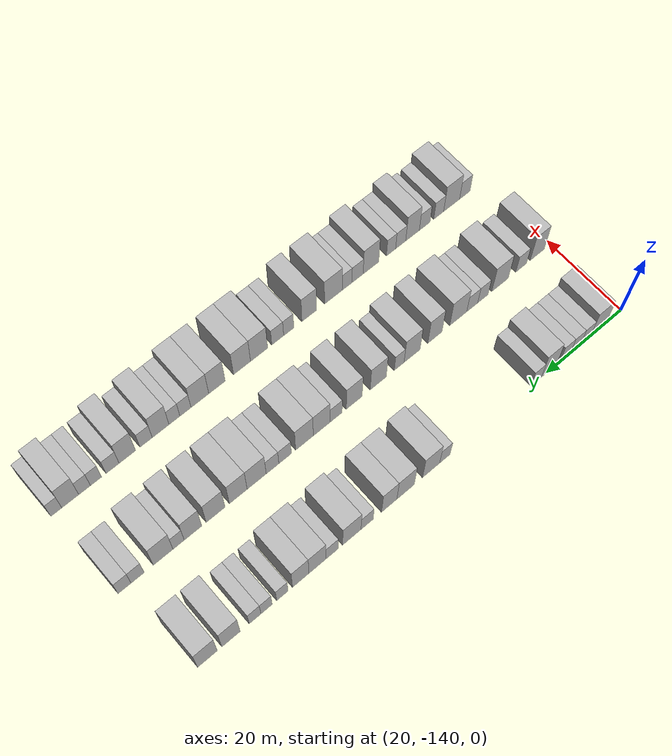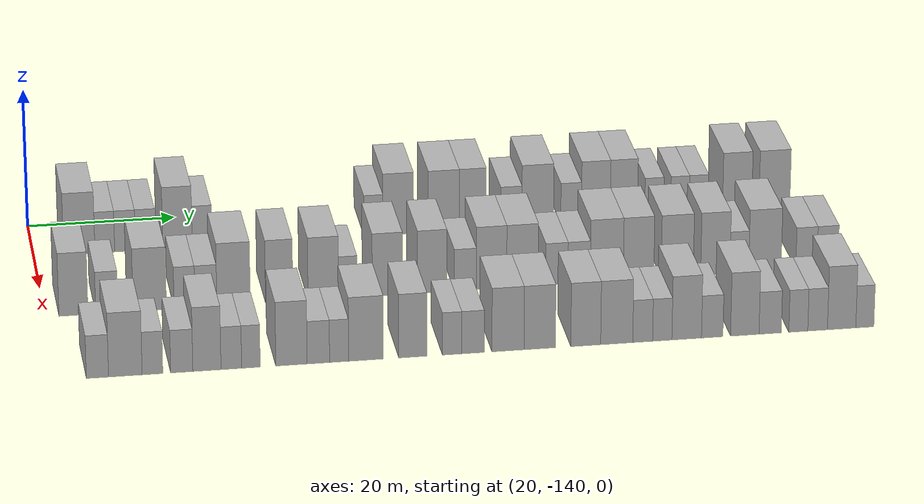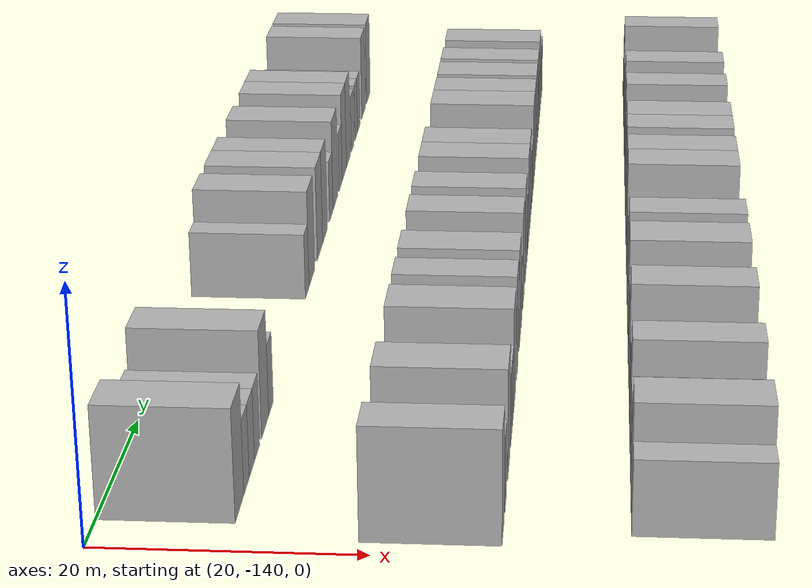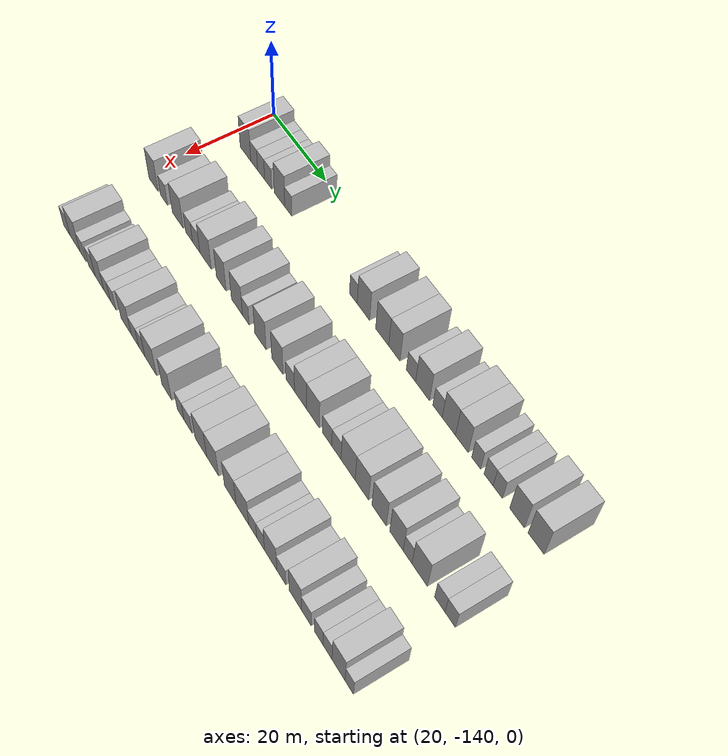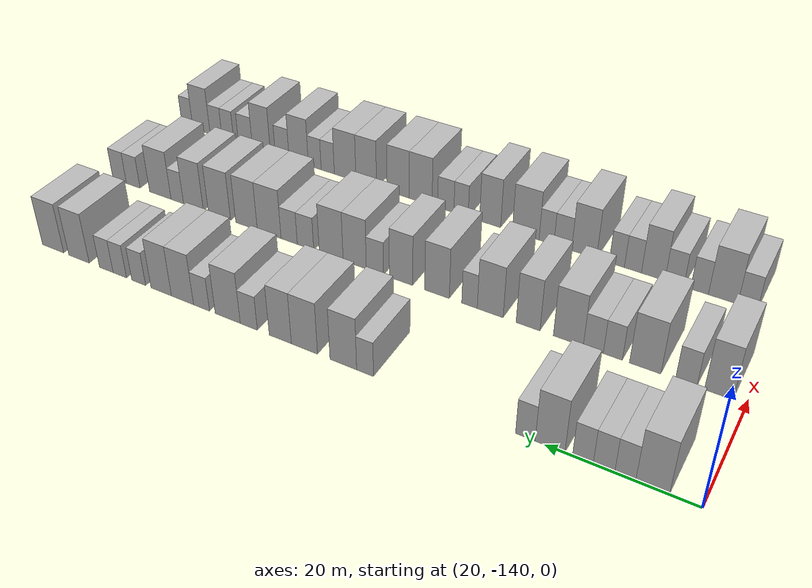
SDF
<sdf version="1.6">
 <world name="default">
  <model name="building_27">
   <static>1</static>
   <pose>25.0000 -133.9004 0 0.000000 0.000000 0.000000</pose>
   <link name="link">
    <pose>0 0 4.50 0 0 0</pose>
    <collision name="collision"><geometry><box><size>10.0000 4.2043 9.0000</size></box></geometry></collision>
    <visual name="visual">
     <cast_shadows>0</cast_shadows>
     <geometry><box><size>10.0000 4.2043 9.0000</size></box></geometry>
     <material>
      <script>
       <uri>model://HANNAS_wall/materials/scripts</uri>
       <uri>model://HANNAS_wall/materials/textures</uri>
       <name>vrc/HANNAS_wall</name>
      </script>
     </material>
    </visual>
   </link>
  </model>
  <model name="building_28">
   <static>1</static>
   <pose>25.0000 -130.4720 0 0.000000 0.000000 0.000000</pose>
   <link name="link">
    <pose>0 0 3.00 0 0 0</pose>
    <collision name="collision"><geometry><box><size>10.0000 2.6524 6.0000</size></box></geometry></collision>
    <visual name="visual">
     <cast_shadows>0</cast_shadows>
     <geometry><box><size>10.0000 2.6524 6.0000</size></box></geometry>
     <material>
      <script>
       <uri>model://HANNAS_wall/materials/scripts</uri>
       <uri>model://HANNAS_wall/materials/textures</uri>
       <name>vrc/HANNAS_wall</name>
      </script>
     </material>
    </visual>
   </link>
  </model>
  <model name="building_29">
   <static>1</static>
   <pose>25.0000 -127.7629 0 0.000000 0.000000 0.000000</pose>
   <link name="link">
    <pose>0 0 3.00 0 0 0</pose>
    <collision name="collision"><geometry><box><size>10.0000 2.7659 6.0000</size></box></geometry></collision>
    <visual name="visual">
     <cast_shadows>0</cast_shadows>
     <geometry><box><size>10.0000 2.7659 6.0000</size></box></geometry>
     <material>
      <script>
       <uri>model://HANNAS_wall/materials/scripts</uri>
       <uri>model://HANNAS_wall/materials/textures</uri>
       <name>vrc/HANNAS_wall</name>
      </script>
     </material>
    </visual>
   </link>
  </model>
  <model name="building_30">
   <static>1</static>
   <pose>25.0000 -125.0303 0 0.000000 0.000000 0.000000</pose>
   <link name="link">
    <pose>0 0 3.00 0 0 0</pose>
    <collision name="collision"><geometry><box><size>10.0000 2.6993 6.0000</size></box></geometry></collision>
    <visual name="visual">
     <cast_shadows>0</cast_shadows>
     <geometry><box><size>10.0000 2.6993 6.0000</size></box></geometry>
     <material>
      <script>
       <uri>model://HANNAS_wall/materials/scripts</uri>
       <uri>model://HANNAS_wall/materials/textures</uri>
       <name>vrc/HANNAS_wall</name>
      </script>
     </material>
    </visual>
   </link>
  </model>
  <model name="building_31">
   <static>1</static>
   <pose>25.0000 -120.6938 0 0.000000 0.000000 0.000000</pose>
   <link name="link">
    <pose>0 0 4.50 0 0 0</pose>
    <collision name="collision"><geometry><box><size>10.0000 3.9736 9.0000</size></box></geometry></collision>
    <visual name="visual">
     <cast_shadows>0</cast_shadows>
     <geometry><box><size>10.0000 3.9736 9.0000</size></box></geometry>
     <material>
      <script>
       <uri>model://HANNAS_wall/materials/scripts</uri>
       <uri>model://HANNAS_wall/materials/textures</uri>
       <name>vrc/HANNAS_wall</name>
      </script>
     </material>
    </visual>
   </link>
  </model>
  <model name="building_32">
   <static>1</static>
   <pose>25.0000 -117.3727 0 0.000000 0.000000 0.000000</pose>
   <link name="link">
    <pose>0 0 3.00 0 0 0</pose>
    <collision name="collision"><geometry><box><size>10.0000 2.6687 6.0000</size></box></geometry></collision>
    <visual name="visual">
     <cast_shadows>0</cast_shadows>
     <geometry><box><size>10.0000 2.6687 6.0000</size></box></geometry>
     <material>
      <script>
       <uri>model://HANNAS_wall/materials/scripts</uri>
       <uri>model://HANNAS_wall/materials/textures</uri>
       <name>vrc/HANNAS_wall</name>
      </script>
     </material>
    </visual>
   </link>
  </model>
  <model name="building_33">
   <static>1</static>
   <pose>25.0000 -94.1306 0 0.000000 0.000000 0.000000</pose>
   <link name="link">
    <pose>0 0 3.00 0 0 0</pose>
    <collision name="collision"><geometry><box><size>10.0000 2.6051 6.0000</size></box></geometry></collision>
    <visual name="visual">
     <cast_shadows>0</cast_shadows>
     <geometry><box><size>10.0000 2.6051 6.0000</size></box></geometry>
     <material>
      <script>
       <uri>model://HANNAS_wall/materials/scripts</uri>
       <uri>model://HANNAS_wall/materials/textures</uri>
       <name>vrc/HANNAS_wall</name>
      </script>
     </material>
    </visual>
   </link>
  </model>
  <model name="building_34">
   <static>1</static>
   <pose>25.0000 -90.7363 0 0.000000 0.000000 0.000000</pose>
   <link name="link">
    <pose>0 0 4.50 0 0 0</pose>
    <collision name="collision"><geometry><box><size>10.0000 4.1834 9.0000</size></box></geometry></collision>
    <visual name="visual">
     <cast_shadows>0</cast_shadows>
     <geometry><box><size>10.0000 4.1834 9.0000</size></box></geometry>
     <material>
      <script>
       <uri>model://HANNAS_wall/materials/scripts</uri>
       <uri>model://HANNAS_wall/materials/textures</uri>
       <name>vrc/HANNAS_wall</name>
      </script>
     </material>
    </visual>
   </link>
  </model>
  <model name="building_35">
   <static>1</static>
   <pose>25.0000 -84.5259 0 0.000000 0.000000 0.000000</pose>
   <link name="link">
    <pose>0 0 4.50 0 0 0</pose>
    <collision name="collision"><geometry><box><size>10.0000 4.2373 9.0000</size></box></geometry></collision>
    <visual name="visual">
     <cast_shadows>0</cast_shadows>
     <geometry><box><size>10.0000 4.2373 9.0000</size></box></geometry>
     <material>
      <script>
       <uri>model://HANNAS_wall/materials/scripts</uri>
       <uri>model://HANNAS_wall/materials/textures</uri>
       <name>vrc/HANNAS_wall</name>
      </script>
     </material>
    </visual>
   </link>
  </model>
  <model name="building_36">
   <static>1</static>
   <pose>25.0000 -80.5714 0 0.000000 0.000000 0.000000</pose>
   <link name="link">
    <pose>0 0 4.50 0 0 0</pose>
    <collision name="collision"><geometry><box><size>10.0000 3.6718 9.0000</size></box></geometry></collision>
    <visual name="visual">
     <cast_shadows>0</cast_shadows>
     <geometry><box><size>10.0000 3.6718 9.0000</size></box></geometry>
     <material>
      <script>
       <uri>model://HANNAS_wall/materials/scripts</uri>
       <uri>model://HANNAS_wall/materials/textures</uri>
       <name>vrc/HANNAS_wall</name>
      </script>
     </material>
    </visual>
   </link>
  </model>
  <model name="building_37">
   <static>1</static>
   <pose>25.0000 -75.2825 0 0.000000 0.000000 0.000000</pose>
   <link name="link">
    <pose>0 0 3.00 0 0 0</pose>
    <collision name="collision"><geometry><box><size>10.0000 2.9061 6.0000</size></box></geometry></collision>
    <visual name="visual">
     <cast_shadows>0</cast_shadows>
     <geometry><box><size>10.0000 2.9061 6.0000</size></box></geometry>
     <material>
      <script>
       <uri>model://HANNAS_wall/materials/scripts</uri>
       <uri>model://HANNAS_wall/materials/textures</uri>
       <name>vrc/HANNAS_wall</name>
      </script>
     </material>
    </visual>
   </link>
  </model>
  <model name="building_38">
   <static>1</static>
   <pose>25.0000 -71.6623 0 0.000000 0.000000 0.000000</pose>
   <link name="link">
    <pose>0 0 4.50 0 0 0</pose>
    <collision name="collision"><geometry><box><size>10.0000 4.3342 9.0000</size></box></geometry></collision>
    <visual name="visual">
     <cast_shadows>0</cast_shadows>
     <geometry><box><size>10.0000 4.3342 9.0000</size></box></geometry>
     <material>
      <script>
       <uri>model://HANNAS_wall/materials/scripts</uri>
       <uri>model://HANNAS_wall/materials/textures</uri>
       <name>vrc/HANNAS_wall</name>
      </script>
     </material>
    </visual>
   </link>
  </model>
  <model name="building_39">
   <static>1</static>
   <pose>25.0000 -67.0746 0 0.000000 0.000000 0.000000</pose>
   <link name="link">
    <pose>0 0 3.00 0 0 0</pose>
    <collision name="collision"><geometry><box><size>10.0000 2.8413 6.0000</size></box></geometry></collision>
    <visual name="visual">
     <cast_shadows>0</cast_shadows>
     <geometry><box><size>10.0000 2.8413 6.0000</size></box></geometry>
     <material>
      <script>
       <uri>model://HANNAS_wall/materials/scripts</uri>
       <uri>model://HANNAS_wall/materials/textures</uri>
       <name>vrc/HANNAS_wall</name>
      </script>
     </material>
    </visual>
   </link>
  </model>
  <model name="building_40">
   <static>1</static>
   <pose>25.0000 -63.6669 0 0.000000 0.000000 0.000000</pose>
   <link name="link">
    <pose>0 0 4.50 0 0 0</pose>
    <collision name="collision"><geometry><box><size>10.0000 3.9742 9.0000</size></box></geometry></collision>
    <visual name="visual">
     <cast_shadows>0</cast_shadows>
     <geometry><box><size>10.0000 3.9742 9.0000</size></box></geometry>
     <material>
      <script>
       <uri>model://HANNAS_wall/materials/scripts</uri>
       <uri>model://HANNAS_wall/materials/textures</uri>
       <name>vrc/HANNAS_wall</name>
      </script>
     </material>
    </visual>
   </link>
  </model>
  <model name="building_41">
   <static>1</static>
   <pose>25.0000 -59.8022 0 0.000000 0.000000 0.000000</pose>
   <link name="link">
    <pose>0 0 4.50 0 0 0</pose>
    <collision name="collision"><geometry><box><size>10.0000 3.7553 9.0000</size></box></geometry></collision>
    <visual name="visual">
     <cast_shadows>0</cast_shadows>
     <geometry><box><size>10.0000 3.7553 9.0000</size></box></geometry>
     <material>
      <script>
       <uri>model://HANNAS_wall/materials/scripts</uri>
       <uri>model://HANNAS_wall/materials/textures</uri>
       <name>vrc/HANNAS_wall</name>
      </script>
     </material>
    </visual>
   </link>
  </model>
  <model name="building_42">
   <static>1</static>
   <pose>25.0000 -55.6284 0 0.000000 0.000000 0.000000</pose>
   <link name="link">
    <pose>0 0 3.00 0 0 0</pose>
    <collision name="collision"><geometry><box><size>10.0000 2.5923 6.0000</size></box></geometry></collision>
    <visual name="visual">
     <cast_shadows>0</cast_shadows>
     <geometry><box><size>10.0000 2.5923 6.0000</size></box></geometry>
     <material>
      <script>
       <uri>model://HANNAS_wall/materials/scripts</uri>
       <uri>model://HANNAS_wall/materials/textures</uri>
       <name>vrc/HANNAS_wall</name>
      </script>
     </material>
    </visual>
   </link>
  </model>
  <model name="building_43">
   <static>1</static>
   <pose>25.0000 -52.0600 0 0.000000 0.000000 0.000000</pose>
   <link name="link">
    <pose>0 0 3.00 0 0 0</pose>
    <collision name="collision"><geometry><box><size>10.0000 2.5443 6.0000</size></box></geometry></collision>
    <visual name="visual">
     <cast_shadows>0</cast_shadows>
     <geometry><box><size>10.0000 2.5443 6.0000</size></box></geometry>
     <material>
      <script>
       <uri>model://HANNAS_wall/materials/scripts</uri>
       <uri>model://HANNAS_wall/materials/textures</uri>
       <name>vrc/HANNAS_wall</name>
      </script>
     </material>
    </visual>
   </link>
  </model>
  <model name="building_44">
   <static>1</static>
   <pose>25.0000 -49.4723 0 0.000000 0.000000 0.000000</pose>
   <link name="link">
    <pose>0 0 3.00 0 0 0</pose>
    <collision name="collision"><geometry><box><size>10.0000 2.6311 6.0000</size></box></geometry></collision>
    <visual name="visual">
     <cast_shadows>0</cast_shadows>
     <geometry><box><size>10.0000 2.6311 6.0000</size></box></geometry>
     <material>
      <script>
       <uri>model://HANNAS_wall/materials/scripts</uri>
       <uri>model://HANNAS_wall/materials/textures</uri>
       <name>vrc/HANNAS_wall</name>
      </script>
     </material>
    </visual>
   </link>
  </model>
  <model name="building_45">
   <static>1</static>
   <pose>25.0000 -44.1306 0 0.000000 0.000000 0.000000</pose>
   <link name="link">
    <pose>0 0 4.50 0 0 0</pose>
    <collision name="collision"><geometry><box><size>10.0000 4.0522 9.0000</size></box></geometry></collision>
    <visual name="visual">
     <cast_shadows>0</cast_shadows>
     <geometry><box><size>10.0000 4.0522 9.0000</size></box></geometry>
     <material>
      <script>
       <uri>model://HANNAS_wall/materials/scripts</uri>
       <uri>model://HANNAS_wall/materials/textures</uri>
       <name>vrc/HANNAS_wall</name>
      </script>
     </material>
    </visual>
   </link>
  </model>
  <model name="building_46">
   <static>1</static>
   <pose>25.0000 -38.9556 0 0.000000 0.000000 0.000000</pose>
   <link name="link">
    <pose>0 0 4.50 0 0 0</pose>
    <collision name="collision"><geometry><box><size>10.0000 4.2977 9.0000</size></box></geometry></collision>
    <visual name="visual">
     <cast_shadows>0</cast_shadows>
     <geometry><box><size>10.0000 4.2977 9.0000</size></box></geometry>
     <material>
      <script>
       <uri>model://HANNAS_wall/materials/scripts</uri>
       <uri>model://HANNAS_wall/materials/textures</uri>
       <name>vrc/HANNAS_wall</name>
      </script>
     </material>
    </visual>
   </link>
  </model>
  <model name="building_145">
   <static>1</static>
   <pose>44.0000 -136.3205 0 0.000000 0.000000 0.000000</pose>
   <link name="link">
    <pose>0 0 4.50 0 0 0</pose>
    <collision name="collision"><geometry><box><size>10.0000 3.8134 9.0000</size></box></geometry></collision>
    <visual name="visual">
     <cast_shadows>0</cast_shadows>
     <geometry><box><size>10.0000 3.8134 9.0000</size></box></geometry>
     <material>
      <script>
       <uri>model://HANNAS_wall/materials/scripts</uri>
       <uri>model://HANNAS_wall/materials/textures</uri>
       <name>vrc/HANNAS_wall</name>
      </script>
     </material>
    </visual>
   </link>
  </model>
  <model name="building_146">
   <static>1</static>
   <pose>44.0000 -131.9627 0 0.000000 0.000000 0.000000</pose>
   <link name="link">
    <pose>0 0 3.00 0 0 0</pose>
    <collision name="collision"><geometry><box><size>10.0000 2.9021 6.0000</size></box></geometry></collision>
    <visual name="visual">
     <cast_shadows>0</cast_shadows>
     <geometry><box><size>10.0000 2.9021 6.0000</size></box></geometry>
     <material>
      <script>
       <uri>model://HANNAS_wall/materials/scripts</uri>
       <uri>model://HANNAS_wall/materials/textures</uri>
       <name>vrc/HANNAS_wall</name>
      </script>
     </material>
    </visual>
   </link>
  </model>
  <model name="building_147">
   <static>1</static>
   <pose>44.0000 -126.3169 0 0.000000 0.000000 0.000000</pose>
   <link name="link">
    <pose>0 0 4.50 0 0 0</pose>
    <collision name="collision"><geometry><box><size>10.0000 4.3896 9.0000</size></box></geometry></collision>
    <visual name="visual">
     <cast_shadows>0</cast_shadows>
     <geometry><box><size>10.0000 4.3896 9.0000</size></box></geometry>
     <material>
      <script>
       <uri>model://HANNAS_wall/materials/scripts</uri>
       <uri>model://HANNAS_wall/materials/textures</uri>
       <name>vrc/HANNAS_wall</name>
      </script>
     </material>
    </visual>
   </link>
  </model>
  <model name="building_148">
   <static>1</static>
   <pose>44.0000 -121.7622 0 0.000000 0.000000 0.000000</pose>
   <link name="link">
    <pose>0 0 3.00 0 0 0</pose>
    <collision name="collision"><geometry><box><size>10.0000 2.7198 6.0000</size></box></geometry></collision>
    <visual name="visual">
     <cast_shadows>0</cast_shadows>
     <geometry><box><size>10.0000 2.7198 6.0000</size></box></geometry>
     <material>
      <script>
       <uri>model://HANNAS_wall/materials/scripts</uri>
       <uri>model://HANNAS_wall/materials/textures</uri>
       <name>vrc/HANNAS_wall</name>
      </script>
     </material>
    </visual>
   </link>
  </model>
  <model name="building_149">
   <static>1</static>
   <pose>44.0000 -118.9524 0 0.000000 0.000000 0.000000</pose>
   <link name="link">
    <pose>0 0 3.00 0 0 0</pose>
    <collision name="collision"><geometry><box><size>10.0000 2.8997 6.0000</size></box></geometry></collision>
    <visual name="visual">
     <cast_shadows>0</cast_shadows>
     <geometry><box><size>10.0000 2.8997 6.0000</size></box></geometry>
     <material>
      <script>
       <uri>model://HANNAS_wall/materials/scripts</uri>
       <uri>model://HANNAS_wall/materials/textures</uri>
       <name>vrc/HANNAS_wall</name>
      </script>
     </material>
    </visual>
   </link>
  </model>
  <model name="building_150">
   <static>1</static>
   <pose>44.0000 -115.2924 0 0.000000 0.000000 0.000000</pose>
   <link name="link">
    <pose>0 0 4.50 0 0 0</pose>
    <collision name="collision"><geometry><box><size>10.0000 4.4203 9.0000</size></box></geometry></collision>
    <visual name="visual">
     <cast_shadows>0</cast_shadows>
     <geometry><box><size>10.0000 4.4203 9.0000</size></box></geometry>
     <material>
      <script>
       <uri>model://HANNAS_wall/materials/scripts</uri>
       <uri>model://HANNAS_wall/materials/textures</uri>
       <name>vrc/HANNAS_wall</name>
      </script>
     </material>
    </visual>
   </link>
  </model>
  <model name="building_151">
   <static>1</static>
   <pose>44.0000 -109.2674 0 0.000000 0.000000 0.000000</pose>
   <link name="link">
    <pose>0 0 4.50 0 0 0</pose>
    <collision name="collision"><geometry><box><size>10.0000 3.6297 9.0000</size></box></geometry></collision>
    <visual name="visual">
     <cast_shadows>0</cast_shadows>
     <geometry><box><size>10.0000 3.6297 9.0000</size></box></geometry>
     <material>
      <script>
       <uri>model://HANNAS_wall/materials/scripts</uri>
       <uri>model://HANNAS_wall/materials/textures</uri>
       <name>vrc/HANNAS_wall</name>
      </script>
     </material>
    </visual>
   </link>
  </model>
  <model name="building_152">
   <static>1</static>
   <pose>44.0000 -103.4230 0 0.000000 0.000000 0.000000</pose>
   <link name="link">
    <pose>0 0 4.50 0 0 0</pose>
    <collision name="collision"><geometry><box><size>10.0000 4.0592 9.0000</size></box></geometry></collision>
    <visual name="visual">
     <cast_shadows>0</cast_shadows>
     <geometry><box><size>10.0000 4.0592 9.0000</size></box></geometry>
     <material>
      <script>
       <uri>model://HANNAS_wall/materials/scripts</uri>
       <uri>model://HANNAS_wall/materials/textures</uri>
       <name>vrc/HANNAS_wall</name>
      </script>
     </material>
    </visual>
   </link>
  </model>
  <model name="building_153">
   <static>1</static>
   <pose>44.0000 -100.1595 0 0.000000 0.000000 0.000000</pose>
   <link name="link">
    <pose>0 0 3.00 0 0 0</pose>
    <collision name="collision"><geometry><box><size>10.0000 2.4677 6.0000</size></box></geometry></collision>
    <visual name="visual">
     <cast_shadows>0</cast_shadows>
     <geometry><box><size>10.0000 2.4677 6.0000</size></box></geometry>
     <material>
      <script>
       <uri>model://HANNAS_wall/materials/scripts</uri>
       <uri>model://HANNAS_wall/materials/textures</uri>
       <name>vrc/HANNAS_wall</name>
      </script>
     </material>
    </visual>
   </link>
  </model>
  <model name="building_154">
   <static>1</static>
   <pose>44.0000 -94.9186 0 0.000000 0.000000 0.000000</pose>
   <link name="link">
    <pose>0 0 4.50 0 0 0</pose>
    <collision name="collision"><geometry><box><size>10.0000 4.0142 9.0000</size></box></geometry></collision>
    <visual name="visual">
     <cast_shadows>0</cast_shadows>
     <geometry><box><size>10.0000 4.0142 9.0000</size></box></geometry>
     <material>
      <script>
       <uri>model://HANNAS_wall/materials/scripts</uri>
       <uri>model://HANNAS_wall/materials/textures</uri>
       <name>vrc/HANNAS_wall</name>
      </script>
     </material>
    </visual>
   </link>
  </model>
  <model name="building_155">
   <static>1</static>
   <pose>44.0000 -88.9586 0 0.000000 0.000000 0.000000</pose>
   <link name="link">
    <pose>0 0 4.50 0 0 0</pose>
    <collision name="collision"><geometry><box><size>10.0000 3.9058 9.0000</size></box></geometry></collision>
    <visual name="visual">
     <cast_shadows>0</cast_shadows>
     <geometry><box><size>10.0000 3.9058 9.0000</size></box></geometry>
     <material>
      <script>
       <uri>model://HANNAS_wall/materials/scripts</uri>
       <uri>model://HANNAS_wall/materials/textures</uri>
       <name>vrc/HANNAS_wall</name>
      </script>
     </material>
    </visual>
   </link>
  </model>
  <model name="building_156">
   <static>1</static>
   <pose>44.0000 -84.5316 0 0.000000 0.000000 0.000000</pose>
   <link name="link">
    <pose>0 0 3.00 0 0 0</pose>
    <collision name="collision"><geometry><box><size>10.0000 2.9482 6.0000</size></box></geometry></collision>
    <visual name="visual">
     <cast_shadows>0</cast_shadows>
     <geometry><box><size>10.0000 2.9482 6.0000</size></box></geometry>
     <material>
      <script>
       <uri>model://HANNAS_wall/materials/scripts</uri>
       <uri>model://HANNAS_wall/materials/textures</uri>
       <name>vrc/HANNAS_wall</name>
      </script>
     </material>
    </visual>
   </link>
  </model>
  <model name="building_157">
   <static>1</static>
   <pose>44.0000 -81.0352 0 0.000000 0.000000 0.000000</pose>
   <link name="link">
    <pose>0 0 4.50 0 0 0</pose>
    <collision name="collision"><geometry><box><size>10.0000 4.0446 9.0000</size></box></geometry></collision>
    <visual name="visual">
     <cast_shadows>0</cast_shadows>
     <geometry><box><size>10.0000 4.0446 9.0000</size></box></geometry>
     <material>
      <script>
       <uri>model://HANNAS_wall/materials/scripts</uri>
       <uri>model://HANNAS_wall/materials/textures</uri>
       <name>vrc/HANNAS_wall</name>
      </script>
     </material>
    </visual>
   </link>
  </model>
  <model name="building_158">
   <static>1</static>
   <pose>44.0000 -76.8957 0 0.000000 0.000000 0.000000</pose>
   <link name="link">
    <pose>0 0 4.50 0 0 0</pose>
    <collision name="collision"><geometry><box><size>10.0000 4.2344 9.0000</size></box></geometry></collision>
    <visual name="visual">
     <cast_shadows>0</cast_shadows>
     <geometry><box><size>10.0000 4.2344 9.0000</size></box></geometry>
     <material>
      <script>
       <uri>model://HANNAS_wall/materials/scripts</uri>
       <uri>model://HANNAS_wall/materials/textures</uri>
       <name>vrc/HANNAS_wall</name>
      </script>
     </material>
    </visual>
   </link>
  </model>
  <model name="building_159">
   <static>1</static>
   <pose>44.0000 -72.2878 0 0.000000 0.000000 0.000000</pose>
   <link name="link">
    <pose>0 0 3.00 0 0 0</pose>
    <collision name="collision"><geometry><box><size>10.0000 2.9814 6.0000</size></box></geometry></collision>
    <visual name="visual">
     <cast_shadows>0</cast_shadows>
     <geometry><box><size>10.0000 2.9814 6.0000</size></box></geometry>
     <material>
      <script>
       <uri>model://HANNAS_wall/materials/scripts</uri>
       <uri>model://HANNAS_wall/materials/textures</uri>
       <name>vrc/HANNAS_wall</name>
      </script>
     </material>
    </visual>
   </link>
  </model>
  <model name="building_160">
   <static>1</static>
   <pose>44.0000 -69.3068 0 0.000000 0.000000 0.000000</pose>
   <link name="link">
    <pose>0 0 3.00 0 0 0</pose>
    <collision name="collision"><geometry><box><size>10.0000 2.9805 6.0000</size></box></geometry></collision>
    <visual name="visual">
     <cast_shadows>0</cast_shadows>
     <geometry><box><size>10.0000 2.9805 6.0000</size></box></geometry>
     <material>
      <script>
       <uri>model://HANNAS_wall/materials/scripts</uri>
       <uri>model://HANNAS_wall/materials/textures</uri>
       <name>vrc/HANNAS_wall</name>
      </script>
     </material>
    </visual>
   </link>
  </model>
  <model name="building_161">
   <static>1</static>
   <pose>44.0000 -65.5922 0 0.000000 0.000000 0.000000</pose>
   <link name="link">
    <pose>0 0 4.50 0 0 0</pose>
    <collision name="collision"><geometry><box><size>10.0000 4.4486 9.0000</size></box></geometry></collision>
    <visual name="visual">
     <cast_shadows>0</cast_shadows>
     <geometry><box><size>10.0000 4.4486 9.0000</size></box></geometry>
     <material>
      <script>
       <uri>model://HANNAS_wall/materials/scripts</uri>
       <uri>model://HANNAS_wall/materials/textures</uri>
       <name>vrc/HANNAS_wall</name>
      </script>
     </material>
    </visual>
   </link>
  </model>
  <model name="building_162">
   <static>1</static>
   <pose>44.0000 -61.3118 0 0.000000 0.000000 0.000000</pose>
   <link name="link">
    <pose>0 0 4.50 0 0 0</pose>
    <collision name="collision"><geometry><box><size>10.0000 4.1122 9.0000</size></box></geometry></collision>
    <visual name="visual">
     <cast_shadows>0</cast_shadows>
     <geometry><box><size>10.0000 4.1122 9.0000</size></box></geometry>
     <material>
      <script>
       <uri>model://HANNAS_wall/materials/scripts</uri>
       <uri>model://HANNAS_wall/materials/textures</uri>
       <name>vrc/HANNAS_wall</name>
      </script>
     </material>
    </visual>
   </link>
  </model>
  <model name="building_163">
   <static>1</static>
   <pose>44.0000 -56.0906 0 0.000000 0.000000 0.000000</pose>
   <link name="link">
    <pose>0 0 4.50 0 0 0</pose>
    <collision name="collision"><geometry><box><size>10.0000 4.3302 9.0000</size></box></geometry></collision>
    <visual name="visual">
     <cast_shadows>0</cast_shadows>
     <geometry><box><size>10.0000 4.3302 9.0000</size></box></geometry>
     <material>
      <script>
       <uri>model://HANNAS_wall/materials/scripts</uri>
       <uri>model://HANNAS_wall/materials/textures</uri>
       <name>vrc/HANNAS_wall</name>
      </script>
     </material>
    </visual>
   </link>
  </model>
  <model name="building_164">
   <static>1</static>
   <pose>44.0000 -50.9438 0 0.000000 0.000000 0.000000</pose>
   <link name="link">
    <pose>0 0 4.50 0 0 0</pose>
    <collision name="collision"><geometry><box><size>10.0000 3.9636 9.0000</size></box></geometry></collision>
    <visual name="visual">
     <cast_shadows>0</cast_shadows>
     <geometry><box><size>10.0000 3.9636 9.0000</size></box></geometry>
     <material>
      <script>
       <uri>model://HANNAS_wall/materials/scripts</uri>
       <uri>model://HANNAS_wall/materials/textures</uri>
       <name>vrc/HANNAS_wall</name>
      </script>
     </material>
    </visual>
   </link>
  </model>
  <model name="building_165">
   <static>1</static>
   <pose>44.0000 -47.6942 0 0.000000 0.000000 0.000000</pose>
   <link name="link">
    <pose>0 0 3.00 0 0 0</pose>
    <collision name="collision"><geometry><box><size>10.0000 2.5356 6.0000</size></box></geometry></collision>
    <visual name="visual">
     <cast_shadows>0</cast_shadows>
     <geometry><box><size>10.0000 2.5356 6.0000</size></box></geometry>
     <material>
      <script>
       <uri>model://HANNAS_wall/materials/scripts</uri>
       <uri>model://HANNAS_wall/materials/textures</uri>
       <name>vrc/HANNAS_wall</name>
      </script>
     </material>
    </visual>
   </link>
  </model>
  <model name="building_166">
   <static>1</static>
   <pose>44.0000 -44.2271 0 0.000000 0.000000 0.000000</pose>
   <link name="link">
    <pose>0 0 4.50 0 0 0</pose>
    <collision name="collision"><geometry><box><size>10.0000 4.3986 9.0000</size></box></geometry></collision>
    <visual name="visual">
     <cast_shadows>0</cast_shadows>
     <geometry><box><size>10.0000 4.3986 9.0000</size></box></geometry>
     <material>
      <script>
       <uri>model://HANNAS_wall/materials/scripts</uri>
       <uri>model://HANNAS_wall/materials/textures</uri>
       <name>vrc/HANNAS_wall</name>
      </script>
     </material>
    </visual>
   </link>
  </model>
  <model name="building_167">
   <static>1</static>
   <pose>44.0000 -38.5871 0 0.000000 0.000000 0.000000</pose>
   <link name="link">
    <pose>0 0 3.00 0 0 0</pose>
    <collision name="collision"><geometry><box><size>10.0000 2.8814 6.0000</size></box></geometry></collision>
    <visual name="visual">
     <cast_shadows>0</cast_shadows>
     <geometry><box><size>10.0000 2.8814 6.0000</size></box></geometry>
     <material>
      <script>
       <uri>model://HANNAS_wall/materials/scripts</uri>
       <uri>model://HANNAS_wall/materials/textures</uri>
       <name>vrc/HANNAS_wall</name>
      </script>
     </material>
    </visual>
   </link>
  </model>
  <model name="building_168">
   <static>1</static>
   <pose>44.0000 -35.7199 0 0.000000 0.000000 0.000000</pose>
   <link name="link">
    <pose>0 0 3.00 0 0 0</pose>
    <collision name="collision"><geometry><box><size>10.0000 2.8529 6.0000</size></box></geometry></collision>
    <visual name="visual">
     <cast_shadows>0</cast_shadows>
     <geometry><box><size>10.0000 2.8529 6.0000</size></box></geometry>
     <material>
      <script>
       <uri>model://HANNAS_wall/materials/scripts</uri>
       <uri>model://HANNAS_wall/materials/textures</uri>
       <name>vrc/HANNAS_wall</name>
      </script>
     </material>
    </visual>
   </link>
  </model>
  <model name="building_262">
   <static>1</static>
   <pose>63.0000 -134.9151 0 0.000000 0.000000 0.000000</pose>
   <link name="link">
    <pose>0 0 3.00 0 0 0</pose>
    <collision name="collision"><geometry><box><size>10.0000 2.8336 6.0000</size></box></geometry></collision>
    <visual name="visual">
     <cast_shadows>0</cast_shadows>
     <geometry><box><size>10.0000 2.8336 6.0000</size></box></geometry>
     <material>
      <script>
       <uri>model://HANNAS_wall/materials/scripts</uri>
       <uri>model://HANNAS_wall/materials/textures</uri>
       <name>vrc/HANNAS_wall</name>
      </script>
     </material>
    </visual>
   </link>
  </model>
  <model name="building_263">
   <static>1</static>
   <pose>63.0000 -131.3473 0 0.000000 0.000000 0.000000</pose>
   <link name="link">
    <pose>0 0 4.50 0 0 0</pose>
    <collision name="collision"><geometry><box><size>10.0000 4.3020 9.0000</size></box></geometry></collision>
    <visual name="visual">
     <cast_shadows>0</cast_shadows>
     <geometry><box><size>10.0000 4.3020 9.0000</size></box></geometry>
     <material>
      <script>
       <uri>model://HANNAS_wall/materials/scripts</uri>
       <uri>model://HANNAS_wall/materials/textures</uri>
       <name>vrc/HANNAS_wall</name>
      </script>
     </material>
    </visual>
   </link>
  </model>
  <model name="building_264">
   <static>1</static>
   <pose>63.0000 -127.8727 0 0.000000 0.000000 0.000000</pose>
   <link name="link">
    <pose>0 0 3.00 0 0 0</pose>
    <collision name="collision"><geometry><box><size>10.0000 2.6472 6.0000</size></box></geometry></collision>
    <visual name="visual">
     <cast_shadows>0</cast_shadows>
     <geometry><box><size>10.0000 2.6472 6.0000</size></box></geometry>
     <material>
      <script>
       <uri>model://HANNAS_wall/materials/scripts</uri>
       <uri>model://HANNAS_wall/materials/textures</uri>
       <name>vrc/HANNAS_wall</name>
      </script>
     </material>
    </visual>
   </link>
  </model>
  <model name="building_265">
   <static>1</static>
   <pose>63.0000 -124.1238 0 0.000000 0.000000 0.000000</pose>
   <link name="link">
    <pose>0 0 3.00 0 0 0</pose>
    <collision name="collision"><geometry><box><size>10.0000 2.8506 6.0000</size></box></geometry></collision>
    <visual name="visual">
     <cast_shadows>0</cast_shadows>
     <geometry><box><size>10.0000 2.8506 6.0000</size></box></geometry>
     <material>
      <script>
       <uri>model://HANNAS_wall/materials/scripts</uri>
       <uri>model://HANNAS_wall/materials/textures</uri>
       <name>vrc/HANNAS_wall</name>
      </script>
     </material>
    </visual>
   </link>
  </model>
  <model name="building_266">
   <static>1</static>
   <pose>63.0000 -120.8928 0 0.000000 0.000000 0.000000</pose>
   <link name="link">
    <pose>0 0 4.50 0 0 0</pose>
    <collision name="collision"><geometry><box><size>10.0000 3.6115 9.0000</size></box></geometry></collision>
    <visual name="visual">
     <cast_shadows>0</cast_shadows>
     <geometry><box><size>10.0000 3.6115 9.0000</size></box></geometry>
     <material>
      <script>
       <uri>model://HANNAS_wall/materials/scripts</uri>
       <uri>model://HANNAS_wall/materials/textures</uri>
       <name>vrc/HANNAS_wall</name>
      </script>
     </material>
    </visual>
   </link>
  </model>
  <model name="building_267">
   <static>1</static>
   <pose>63.0000 -117.7620 0 0.000000 0.000000 0.000000</pose>
   <link name="link">
    <pose>0 0 3.00 0 0 0</pose>
    <collision name="collision"><geometry><box><size>10.0000 2.6500 6.0000</size></box></geometry></collision>
    <visual name="visual">
     <cast_shadows>0</cast_shadows>
     <geometry><box><size>10.0000 2.6500 6.0000</size></box></geometry>
     <material>
      <script>
       <uri>model://HANNAS_wall/materials/scripts</uri>
       <uri>model://HANNAS_wall/materials/textures</uri>
       <name>vrc/HANNAS_wall</name>
      </script>
     </material>
    </visual>
   </link>
  </model>
  <model name="building_268">
   <static>1</static>
   <pose>63.0000 -115.2365 0 0.000000 0.000000 0.000000</pose>
   <link name="link">
    <pose>0 0 3.00 0 0 0</pose>
    <collision name="collision"><geometry><box><size>10.0000 2.4010 6.0000</size></box></geometry></collision>
    <visual name="visual">
     <cast_shadows>0</cast_shadows>
     <geometry><box><size>10.0000 2.4010 6.0000</size></box></geometry>
     <material>
      <script>
       <uri>model://HANNAS_wall/materials/scripts</uri>
       <uri>model://HANNAS_wall/materials/textures</uri>
       <name>vrc/HANNAS_wall</name>
      </script>
     </material>
    </visual>
   </link>
  </model>
  <model name="building_269">
   <static>1</static>
   <pose>63.0000 -110.0138 0 0.000000 0.000000 0.000000</pose>
   <link name="link">
    <pose>0 0 4.50 0 0 0</pose>
    <collision name="collision"><geometry><box><size>10.0000 4.0444 9.0000</size></box></geometry></collision>
    <visual name="visual">
     <cast_shadows>0</cast_shadows>
     <geometry><box><size>10.0000 4.0444 9.0000</size></box></geometry>
     <material>
      <script>
       <uri>model://HANNAS_wall/materials/scripts</uri>
       <uri>model://HANNAS_wall/materials/textures</uri>
       <name>vrc/HANNAS_wall</name>
      </script>
     </material>
    </visual>
   </link>
  </model>
  <model name="building_270">
   <static>1</static>
   <pose>63.0000 -106.5438 0 0.000000 0.000000 0.000000</pose>
   <link name="link">
    <pose>0 0 3.00 0 0 0</pose>
    <collision name="collision"><geometry><box><size>10.0000 2.8957 6.0000</size></box></geometry></collision>
    <visual name="visual">
     <cast_shadows>0</cast_shadows>
     <geometry><box><size>10.0000 2.8957 6.0000</size></box></geometry>
     <material>
      <script>
       <uri>model://HANNAS_wall/materials/scripts</uri>
       <uri>model://HANNAS_wall/materials/textures</uri>
       <name>vrc/HANNAS_wall</name>
      </script>
     </material>
    </visual>
   </link>
  </model>
  <model name="building_271">
   <static>1</static>
   <pose>63.0000 -103.8641 0 0.000000 0.000000 0.000000</pose>
   <link name="link">
    <pose>0 0 3.00 0 0 0</pose>
    <collision name="collision"><geometry><box><size>10.0000 2.4637 6.0000</size></box></geometry></collision>
    <visual name="visual">
     <cast_shadows>0</cast_shadows>
     <geometry><box><size>10.0000 2.4637 6.0000</size></box></geometry>
     <material>
      <script>
       <uri>model://HANNAS_wall/materials/scripts</uri>
       <uri>model://HANNAS_wall/materials/textures</uri>
       <name>vrc/HANNAS_wall</name>
      </script>
     </material>
    </visual>
   </link>
  </model>
  <model name="building_272">
   <static>1</static>
   <pose>63.0000 -100.3836 0 0.000000 0.000000 0.000000</pose>
   <link name="link">
    <pose>0 0 4.50 0 0 0</pose>
    <collision name="collision"><geometry><box><size>10.0000 4.4974 9.0000</size></box></geometry></collision>
    <visual name="visual">
     <cast_shadows>0</cast_shadows>
     <geometry><box><size>10.0000 4.4974 9.0000</size></box></geometry>
     <material>
      <script>
       <uri>model://HANNAS_wall/materials/scripts</uri>
       <uri>model://HANNAS_wall/materials/textures</uri>
       <name>vrc/HANNAS_wall</name>
      </script>
     </material>
    </visual>
   </link>
  </model>
  <model name="building_273">
   <static>1</static>
   <pose>63.0000 -94.3047 0 0.000000 0.000000 0.000000</pose>
   <link name="link">
    <pose>0 0 4.50 0 0 0</pose>
    <collision name="collision"><geometry><box><size>10.0000 3.6603 9.0000</size></box></geometry></collision>
    <visual name="visual">
     <cast_shadows>0</cast_shadows>
     <geometry><box><size>10.0000 3.6603 9.0000</size></box></geometry>
     <material>
      <script>
       <uri>model://HANNAS_wall/materials/scripts</uri>
       <uri>model://HANNAS_wall/materials/textures</uri>
       <name>vrc/HANNAS_wall</name>
      </script>
     </material>
    </visual>
   </link>
  </model>
  <model name="building_274">
   <static>1</static>
   <pose>63.0000 -89.2099 0 0.000000 0.000000 0.000000</pose>
   <link name="link">
    <pose>0 0 3.00 0 0 0</pose>
    <collision name="collision"><geometry><box><size>10.0000 2.5292 6.0000</size></box></geometry></collision>
    <visual name="visual">
     <cast_shadows>0</cast_shadows>
     <geometry><box><size>10.0000 2.5292 6.0000</size></box></geometry>
     <material>
      <script>
       <uri>model://HANNAS_wall/materials/scripts</uri>
       <uri>model://HANNAS_wall/materials/textures</uri>
       <name>vrc/HANNAS_wall</name>
      </script>
     </material>
    </visual>
   </link>
  </model>
  <model name="building_275">
   <static>1</static>
   <pose>63.0000 -86.4845 0 0.000000 0.000000 0.000000</pose>
   <link name="link">
    <pose>0 0 3.00 0 0 0</pose>
    <collision name="collision"><geometry><box><size>10.0000 2.9217 6.0000</size></box></geometry></collision>
    <visual name="visual">
     <cast_shadows>0</cast_shadows>
     <geometry><box><size>10.0000 2.9217 6.0000</size></box></geometry>
     <material>
      <script>
       <uri>model://HANNAS_wall/materials/scripts</uri>
       <uri>model://HANNAS_wall/materials/textures</uri>
       <name>vrc/HANNAS_wall</name>
      </script>
     </material>
    </visual>
   </link>
  </model>
  <model name="building_276">
   <static>1</static>
   <pose>63.0000 -81.9313 0 0.000000 0.000000 0.000000</pose>
   <link name="link">
    <pose>0 0 4.50 0 0 0</pose>
    <collision name="collision"><geometry><box><size>10.0000 4.1846 9.0000</size></box></geometry></collision>
    <visual name="visual">
     <cast_shadows>0</cast_shadows>
     <geometry><box><size>10.0000 4.1846 9.0000</size></box></geometry>
     <material>
      <script>
       <uri>model://HANNAS_wall/materials/scripts</uri>
       <uri>model://HANNAS_wall/materials/textures</uri>
       <name>vrc/HANNAS_wall</name>
      </script>
     </material>
    </visual>
   </link>
  </model>
  <model name="building_277">
   <static>1</static>
   <pose>63.0000 -77.7824 0 0.000000 0.000000 0.000000</pose>
   <link name="link">
    <pose>0 0 4.50 0 0 0</pose>
    <collision name="collision"><geometry><box><size>10.0000 4.1133 9.0000</size></box></geometry></collision>
    <visual name="visual">
     <cast_shadows>0</cast_shadows>
     <geometry><box><size>10.0000 4.1133 9.0000</size></box></geometry>
     <material>
      <script>
       <uri>model://HANNAS_wall/materials/scripts</uri>
       <uri>model://HANNAS_wall/materials/textures</uri>
       <name>vrc/HANNAS_wall</name>
      </script>
     </material>
    </visual>
   </link>
  </model>
  <model name="building_278">
   <static>1</static>
   <pose>63.0000 -71.7689 0 0.000000 0.000000 0.000000</pose>
   <link name="link">
    <pose>0 0 4.50 0 0 0</pose>
    <collision name="collision"><geometry><box><size>10.0000 3.9138 9.0000</size></box></geometry></collision>
    <visual name="visual">
     <cast_shadows>0</cast_shadows>
     <geometry><box><size>10.0000 3.9138 9.0000</size></box></geometry>
     <material>
      <script>
       <uri>model://HANNAS_wall/materials/scripts</uri>
       <uri>model://HANNAS_wall/materials/textures</uri>
       <name>vrc/HANNAS_wall</name>
      </script>
     </material>
    </visual>
   </link>
  </model>
  <model name="building_279">
   <static>1</static>
   <pose>63.0000 -67.7076 0 0.000000 0.000000 0.000000</pose>
   <link name="link">
    <pose>0 0 4.50 0 0 0</pose>
    <collision name="collision"><geometry><box><size>10.0000 4.2088 9.0000</size></box></geometry></collision>
    <visual name="visual">
     <cast_shadows>0</cast_shadows>
     <geometry><box><size>10.0000 4.2088 9.0000</size></box></geometry>
     <material>
      <script>
       <uri>model://HANNAS_wall/materials/scripts</uri>
       <uri>model://HANNAS_wall/materials/textures</uri>
       <name>vrc/HANNAS_wall</name>
      </script>
     </material>
    </visual>
   </link>
  </model>
  <model name="building_280">
   <static>1</static>
   <pose>63.0000 -64.3007 0 0.000000 0.000000 0.000000</pose>
   <link name="link">
    <pose>0 0 3.00 0 0 0</pose>
    <collision name="collision"><geometry><box><size>10.0000 2.6050 6.0000</size></box></geometry></collision>
    <visual name="visual">
     <cast_shadows>0</cast_shadows>
     <geometry><box><size>10.0000 2.6050 6.0000</size></box></geometry>
     <material>
      <script>
       <uri>model://HANNAS_wall/materials/scripts</uri>
       <uri>model://HANNAS_wall/materials/textures</uri>
       <name>vrc/HANNAS_wall</name>
      </script>
     </material>
    </visual>
   </link>
  </model>
  <model name="building_281">
   <static>1</static>
   <pose>63.0000 -61.7284 0 0.000000 0.000000 0.000000</pose>
   <link name="link">
    <pose>0 0 3.00 0 0 0</pose>
    <collision name="collision"><geometry><box><size>10.0000 2.5396 6.0000</size></box></geometry></collision>
    <visual name="visual">
     <cast_shadows>0</cast_shadows>
     <geometry><box><size>10.0000 2.5396 6.0000</size></box></geometry>
     <material>
      <script>
       <uri>model://HANNAS_wall/materials/scripts</uri>
       <uri>model://HANNAS_wall/materials/textures</uri>
       <name>vrc/HANNAS_wall</name>
      </script>
     </material>
    </visual>
   </link>
  </model>
  <model name="building_282">
   <static>1</static>
   <pose>63.0000 -58.5115 0 0.000000 0.000000 0.000000</pose>
   <link name="link">
    <pose>0 0 4.50 0 0 0</pose>
    <collision name="collision"><geometry><box><size>10.0000 3.8941 9.0000</size></box></geometry></collision>
    <visual name="visual">
     <cast_shadows>0</cast_shadows>
     <geometry><box><size>10.0000 3.8941 9.0000</size></box></geometry>
     <material>
      <script>
       <uri>model://HANNAS_wall/materials/scripts</uri>
       <uri>model://HANNAS_wall/materials/textures</uri>
       <name>vrc/HANNAS_wall</name>
      </script>
     </material>
    </visual>
   </link>
  </model>
  <model name="building_283">
   <static>1</static>
   <pose>63.0000 -55.1481 0 0.000000 0.000000 0.000000</pose>
   <link name="link">
    <pose>0 0 3.00 0 0 0</pose>
    <collision name="collision"><geometry><box><size>10.0000 2.8327 6.0000</size></box></geometry></collision>
    <visual name="visual">
     <cast_shadows>0</cast_shadows>
     <geometry><box><size>10.0000 2.8327 6.0000</size></box></geometry>
     <material>
      <script>
       <uri>model://HANNAS_wall/materials/scripts</uri>
       <uri>model://HANNAS_wall/materials/textures</uri>
       <name>vrc/HANNAS_wall</name>
      </script>
     </material>
    </visual>
   </link>
  </model>
  <model name="building_284">
   <static>1</static>
   <pose>63.0000 -50.8514 0 0.000000 0.000000 0.000000</pose>
   <link name="link">
    <pose>0 0 4.50 0 0 0</pose>
    <collision name="collision"><geometry><box><size>10.0000 3.7607 9.0000</size></box></geometry></collision>
    <visual name="visual">
     <cast_shadows>0</cast_shadows>
     <geometry><box><size>10.0000 3.7607 9.0000</size></box></geometry>
     <material>
      <script>
       <uri>model://HANNAS_wall/materials/scripts</uri>
       <uri>model://HANNAS_wall/materials/textures</uri>
       <name>vrc/HANNAS_wall</name>
      </script>
     </material>
    </visual>
   </link>
  </model>
  <model name="building_285">
   <static>1</static>
   <pose>63.0000 -47.4978 0 0.000000 0.000000 0.000000</pose>
   <link name="link">
    <pose>0 0 3.00 0 0 0</pose>
    <collision name="collision"><geometry><box><size>10.0000 2.9467 6.0000</size></box></geometry></collision>
    <visual name="visual">
     <cast_shadows>0</cast_shadows>
     <geometry><box><size>10.0000 2.9467 6.0000</size></box></geometry>
     <material>
      <script>
       <uri>model://HANNAS_wall/materials/scripts</uri>
       <uri>model://HANNAS_wall/materials/textures</uri>
       <name>vrc/HANNAS_wall</name>
      </script>
     </material>
    </visual>
   </link>
  </model>
  <model name="building_286">
   <static>1</static>
   <pose>63.0000 -43.7680 0 0.000000 0.000000 0.000000</pose>
   <link name="link">
    <pose>0 0 3.00 0 0 0</pose>
    <collision name="collision"><geometry><box><size>10.0000 2.5129 6.0000</size></box></geometry></collision>
    <visual name="visual">
     <cast_shadows>0</cast_shadows>
     <geometry><box><size>10.0000 2.5129 6.0000</size></box></geometry>
     <material>
      <script>
       <uri>model://HANNAS_wall/materials/scripts</uri>
       <uri>model://HANNAS_wall/materials/textures</uri>
       <name>vrc/HANNAS_wall</name>
      </script>
     </material>
    </visual>
   </link>
  </model>
  <model name="building_287">
   <static>1</static>
   <pose>63.0000 -41.2114 0 0.000000 0.000000 0.000000</pose>
   <link name="link">
    <pose>0 0 3.00 0 0 0</pose>
    <collision name="collision"><geometry><box><size>10.0000 2.6003 6.0000</size></box></geometry></collision>
    <visual name="visual">
     <cast_shadows>0</cast_shadows>
     <geometry><box><size>10.0000 2.6003 6.0000</size></box></geometry>
     <material>
      <script>
       <uri>model://HANNAS_wall/materials/scripts</uri>
       <uri>model://HANNAS_wall/materials/textures</uri>
       <name>vrc/HANNAS_wall</name>
      </script>
     </material>
    </visual>
   </link>
  </model>
  <model name="building_288">
   <static>1</static>
   <pose>63.0000 -38.0283 0 0.000000 0.000000 0.000000</pose>
   <link name="link">
    <pose>0 0 4.50 0 0 0</pose>
    <collision name="collision"><geometry><box><size>10.0000 3.7659 9.0000</size></box></geometry></collision>
    <visual name="visual">
     <cast_shadows>0</cast_shadows>
     <geometry><box><size>10.0000 3.7659 9.0000</size></box></geometry>
     <material>
      <script>
       <uri>model://HANNAS_wall/materials/scripts</uri>
       <uri>model://HANNAS_wall/materials/textures</uri>
       <name>vrc/HANNAS_wall</name>
      </script>
     </material>
    </visual>
   </link>
  </model>
  <model name="building_289">
   <static>1</static>
   <pose>63.0000 -34.9451 0 0.000000 0.000000 0.000000</pose>
   <link name="link">
    <pose>0 0 3.00 0 0 0</pose>
    <collision name="collision"><geometry><box><size>10.0000 2.4006 6.0000</size></box></geometry></collision>
    <visual name="visual">
     <cast_shadows>0</cast_shadows>
     <geometry><box><size>10.0000 2.4006 6.0000</size></box></geometry>
     <material>
      <script>
       <uri>model://HANNAS_wall/materials/scripts</uri>
       <uri>model://HANNAS_wall/materials/textures</uri>
       <name>vrc/HANNAS_wall</name>
      </script>
     </material>
    </visual>
   </link>
  </model>
 </world>
</sdf>
